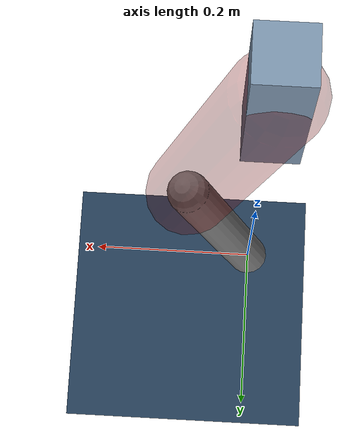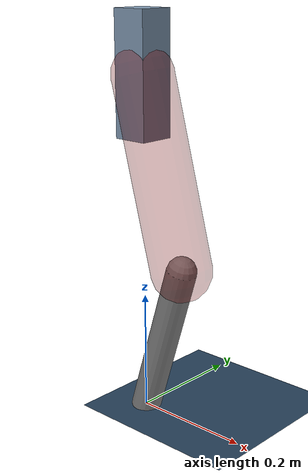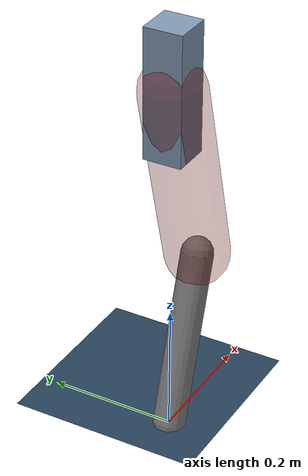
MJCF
<mujoco model="Hopper2D">
	<compiler inertiafromgeom="true" angle="radian" />
	<option timestep="0.001" integrator="implicit" cone="elliptic" solver="Newton" tolerance="1e-10" />

	<default>
		<geom contype="1" conaffinity="1" condim="3" friction="2 0.005 0.0001" solref="0.005 1" />
		<joint limited="true" damping="0.1" />
	</default>

	<asset>
		<texture name="skybox" type="skybox" builtin="gradient" rgb1=".4 .6 .8" rgb2="0 0 0" width="800" height="800" />
		<texture name="grid" type="2d" builtin="checker" rgb1=".1 .2 .3" rgb2=".2 .3 .4" width="300" height="300" mark="edge" markrgb=".2 .3 .4" />
		<material name="ground" texture="grid" texrepeat="1 1" texuniform="true" reflectance="0.1" />
		<material name="leg" rgba="0.5 0.6 0.7 1" />
	</asset>

	<worldbody>

		<geom name="floor" type="plane" size="5 5 0.25" material="ground" />

		<light directional="false" diffuse="0.8 0.8 0.8" specular="0.3 0.3 0.3" pos="0 0 2" dir="0 0 -1" />
		<light mode="targetbodycom" target="base" directional="false" diffuse="0.8 0.8 0.8" specular="0.3 0.3 0.3" pos="0 0 2" dir="0 0 -1" />

		<camera name="fixed" pos="0 -2 1" xyaxes="1 0 0 0 0 1" />
		<camera name="tracking" mode="trackcom" pos="0 -3 1" />

		<body name="root" pos="0 0 0.5653209002639662">
			<joint name="slide_x" type="slide" axis="1 0 0" range="-100 100" />
			<joint name="slide_z" type="slide" axis="0 0 1" range="0 10" />

			<body name="base" pos="0 0 0">
				<geom name="torso" type="box" size="0.03 0.03 0.1" mass="3.229" material="leg" />

				<body name="link1" pos="0 0 0" euler="0 1.3092432657526638 0">
					<joint type="hinge" axis="0 -1 0" pos="0 0 0" name="hinge1" limited="true" range="-3.14 3.14" stiffness="0" damping="0.1" />
					<geom name="thigh" type="capsule" fromto="0 0 0 0.31489266087474554 0 0" size="0.05" rgba="0.5 0 0 0.3" mass="1.029210184361813" />

					<body name="link2" pos="0.31489266087474554 0 0" euler="0 0.5638088080249081 0">
						<joint type="hinge" axis="0 -1 0" pos="0 0 0" name="hinge2" limited="true" range="-3.14 3.14" stiffness="0" damping="0.1" />
						<geom name="shank" type="capsule" fromto="0 0 0 0.27353806061955044 0 0" size="0.025" mass="0.4618304484956403" />

					</body>
				</body>
			</body>
		</body>
	</worldbody>

	<actuator>
		<motor name="torque1" joint="hinge1" ctrlrange="-207.77368858741548 207.77368858741548" ctrllimited="true" gear="1" />
		<motor name="torque2" joint="hinge2" ctrlrange="-113.80514488129303 113.80514488129303" ctrllimited="true" gear="1" />
	</actuator>
</mujoco>
